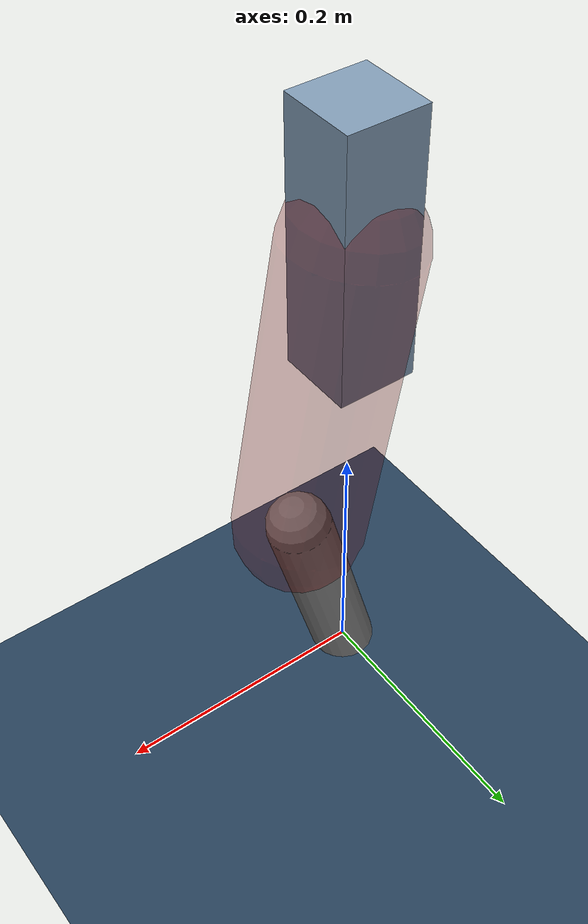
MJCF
<mujoco model="Hopper2D">
	<compiler inertiafromgeom="true" angle="radian" />
	<option timestep="0.001" integrator="implicit" cone="elliptic" solver="Newton" tolerance="1e-10" />

	<default>
		<geom contype="1" conaffinity="1" condim="3" friction="2 0.005 0.0001" solref="0.005 1" />
		<joint limited="true" damping="0.1" />
	</default>

	<asset>
		<texture name="skybox" type="skybox" builtin="gradient" rgb1=".4 .6 .8" rgb2="0 0 0" width="800" height="800" />
		<texture name="grid" type="2d" builtin="checker" rgb1=".1 .2 .3" rgb2=".2 .3 .4" width="300" height="300" mark="edge" markrgb=".2 .3 .4" />
		<material name="ground" texture="grid" texrepeat="1 1" texuniform="true" reflectance="0.1" />
		<material name="leg" rgba="0.5 0.6 0.7 1" />
	</asset>

	<worldbody>

		<geom name="floor" type="plane" size="5 5 0.25" material="ground" />

		<light directional="false" diffuse="0.8 0.8 0.8" specular="0.3 0.3 0.3" pos="0 0 2" dir="0 0 -1" />
		<light mode="targetbodycom" target="base" directional="false" diffuse="0.8 0.8 0.8" specular="0.3 0.3 0.3" pos="0 0 2" dir="0 0 -1" />

		<camera name="fixed" pos="0 -2 1" xyaxes="1 0 0 0 0 1" />
		<camera name="tracking" mode="trackcom" pos="0 -3 1" />

		<body name="root" pos="0 0 0.3923698028999246">
			<joint name="slide_x" type="slide" axis="1 0 0" range="-100 100" />
			<joint name="slide_z" type="slide" axis="0 0 1" range="0 10" />

			<body name="base" pos="0 0 0">
				<geom name="torso" type="box" size="0.03 0.03 0.1" mass="1.968" material="leg" />

				<body name="link1" pos="0 0 0" euler="0 1.3823344509815065 0">
					<joint type="hinge" axis="0 -1 0" pos="0 0 0" name="hinge1" limited="true" range="-3.14 3.14" stiffness="0" damping="0.1" />
					<geom name="thigh" type="capsule" fromto="0 0 0 0.2344714366980705 0 0" size="0.05" rgba="0.5 0 0 0.3" mass="0.8164257354149833" />

					<body name="link2" pos="0.2344714366980705 0 0" euler="0 0.4531759647159149 0">
						<joint type="hinge" axis="0 -1 0" pos="0 0 0" name="hinge2" limited="true" range="-3.14 3.14" stiffness="0" damping="0.1" />
						<geom name="shank" type="capsule" fromto="0 0 0 0.16789836620185414 0 0" size="0.025" mass="0.3734186929614833" />

					</body>
				</body>
			</body>
		</body>
	</worldbody>

	<actuator>
		<motor name="torque1" joint="hinge1" ctrlrange="-105.3372446351426 105.3372446351426" ctrllimited="true" gear="1" />
		<motor name="torque2" joint="hinge2" ctrlrange="-12.104926779180763 12.104926779180763" ctrllimited="true" gear="1" />
	</actuator>
</mujoco>
